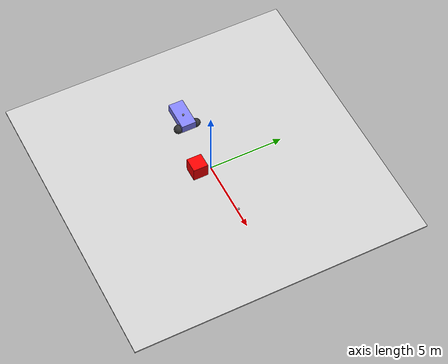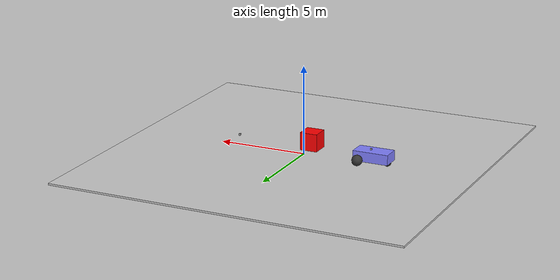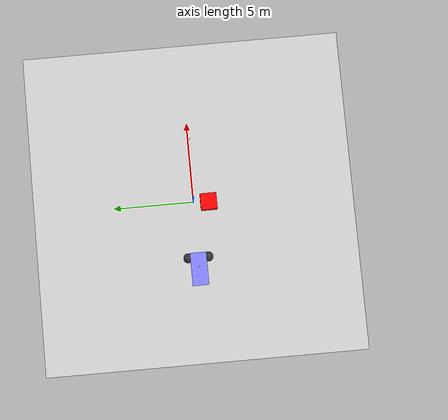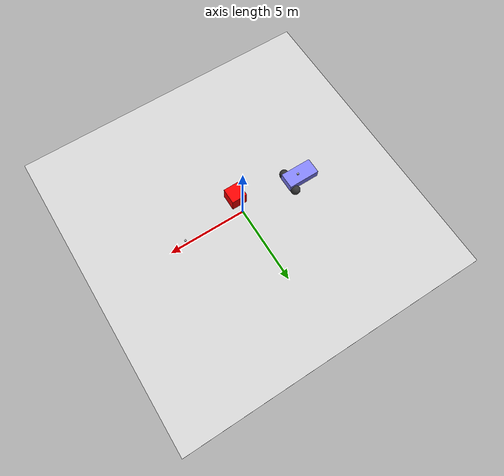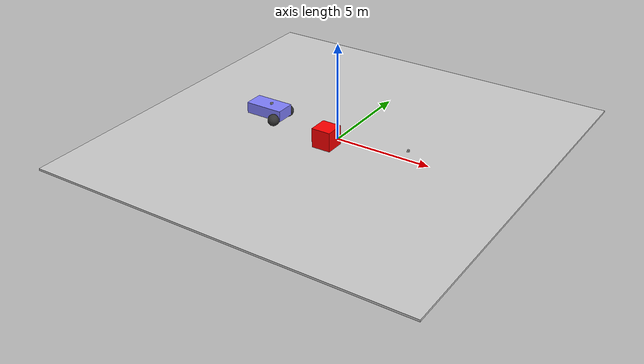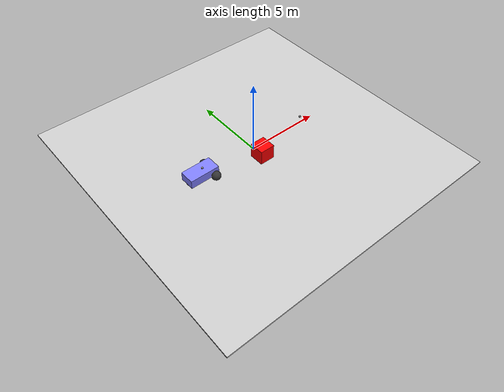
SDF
<sdf version="1.10">
 <world name="visualize_lidar_world">
  <physics name="1ms" type="ignored">
   <max_step_size>0.001</max_step_size>
   <real_time_factor>1</real_time_factor>
   <real_time_update_rate>1000</real_time_update_rate>
  </physics>
  <plugin name="gz::sim::systems::Physics" filename="gz-sim-physics-system"/>
  <plugin name="gz::sim::systems::Sensors" filename="gz-sim-sensors-system">
   <render_engine>ogre2</render_engine>
  </plugin>
  <plugin name="gz::sim::systems::SceneBroadcaster" filename="gz-sim-scene-broadcaster-system"/>
  <gravity>0 0 -9.8000000000000007</gravity>
  <magnetic_field>5.5644999999999998e-06 2.2875799999999999e-05 -4.2388400000000002e-05</magnetic_field>
  <atmosphere type="adiabatic"/>
  <scene>
   <ambient>0.400000006 0.400000006 0.400000006 1</ambient>
   <background>0.699999988 0.699999988 0.699999988 1</background>
   <shadows>true</shadows>
  </scene>
  <model name="ground_plane">
   <static>true</static>
   <link name="link">
    <collision name="collision"><geometry><box><size>20 20 0.10000000000000001</size></box></geometry></collision>
    <visual name="visual">
     <geometry><box><size>20 20 0.10000000000000001</size></box></geometry>
     <material>
      <ambient>0.800000012 0.800000012 0.800000012 1</ambient>
      <diffuse>0.800000012 0.800000012 0.800000012 1</diffuse>
      <specular>0.800000012 0.800000012 0.800000012 1</specular>
     </material>
    </visual>
    <inertial>
     <mass>1</mass>
     <inertia><ixx>1</ixx><ixy>0</ixy><ixz>0</ixz><iyy>1</iyy><iyz>0</iyz><izz>1</izz></inertia>
    </inertial>
   </link>
  </model>
  <model name="box">
   <pose>-0.067625888703758547 -0.92842977219727196 0.54999939641022422 1.1801247564346087e-06 4.1964614322776378e-09 0.0026380061637285277</pose>
   <link name="box_link">
    <inertial>
     <inertia><ixx>1</ixx><ixy>0</ixy><ixz>0</ixz><iyy>1</iyy><iyz>0</iyz><izz>1</izz></inertia>
     <mass>1</mass>
    </inertial>
    <collision name="box_collision"><geometry><box><size>1 1 1</size></box></geometry></collision>
    <visual name="box_visual">
     <geometry><box><size>1 1 1</size></box></geometry>
     <material><ambient>1 0 0 1</ambient><diffuse>1 0 0 1</diffuse><specular>1 0 0 1</specular></material>
    </visual>
   </link>
   <static>false</static>
  </model>
  <model name="model_with_lidar">
   <pose>4 -6.9388900000000004e-18 0.5 0 0 3.1400000000000001</pose>
   <link name="link">
    <pose>0.050000000000000003 0.050000000000000003 0.050000000000000003 0 0 0</pose>
    <inertial>
     <mass>0.10000000000000001</mass>
     <inertia>
      <ixx>0.00016666700000000001</ixx>
      <iyy>0.00016666700000000001</iyy>
      <izz>0.00016666700000000001</izz>
      <ixy>0</ixy>
      <ixz>0</ixz>
      <iyz>0</iyz>
     </inertia>
    </inertial>
    <collision name="collision">
     <geometry><box><size>0.10000000000000001 0.10000000000000001 0.10000000000000001</size></box></geometry>
    </collision>
    <visual name="visual">
     <geometry><box><size>0.10000000000000001 0.10000000000000001 0.10000000000000001</size></box></geometry>
    </visual>
    <sensor name="gpu_lidar" type="gpu_lidar">
     <topic>lidar</topic>
     <update_rate>10</update_rate>
     <enable_metrics>false</enable_metrics>
     <lidar>
      <scan>
       <horizontal>
        <samples>640</samples>
        <resolution>1</resolution>
        <min_angle>-1.396263</min_angle>
        <max_angle>1.396263</max_angle>
       </horizontal>
       <vertical>
        <samples>16</samples>
        <min_angle>-0.261799</min_angle>
        <max_angle>0.261799</max_angle>
        <resolution>1</resolution>
       </vertical>
      </scan>
      <range><min>0.080000000000000002</min><max>10</max><resolution>0.01</resolution></range>
      <noise><type>none</type><mean>0</mean><stddev>0</stddev></noise>
      <visibility_mask>4294967295</visibility_mask>
     </lidar>
    </sensor>
   </link>
   <static>true</static>
  </model>
  <model name="vehicle_blue">
   <pose>-3.9999999923594709 -1.3679798219924739e-14 0.37499916356134794 -6.48428380151821e-15 -3.6334661473190628e-09 -3.9593826131905451e-18</pose>
   <link name="chassis">
    <pose>-0.15142700000000001 0 0.17499999999999999 0 0 0</pose>
    <inertial>
     <mass>1.14395</mass>
     <inertia>
      <ixx>0.126164</ixx>
      <ixy>0</ixy>
      <ixz>0</ixz>
      <iyy>0.41651899999999997</iyy>
      <iyz>0</iyz>
      <izz>0.481014</izz>
     </inertia>
    </inertial>
    <visual name="visual">
     <geometry><box><size>2.0114200000000002 1 0.56872599999999995</size></box></geometry>
     <material><ambient>0.5 0.5 1 1</ambient><diffuse>0.5 0.5 1 1</diffuse><specular>0 0 1 1</specular></material>
    </visual>
    <collision name="collision">
     <geometry><box><size>2.0114200000000002 1 0.56872599999999995</size></box></geometry>
    </collision>
   </link>
   <link name="lidar_link">
    <pose>-4.4408920985006262e-16 0 0.49999999999999994 0 -1.2836918464498039e-32 0</pose>
    <inertial>
     <mass>0.10000000000000001</mass>
     <inertia>
      <ixx>0.00016666700000000001</ixx>
      <iyy>0.00016666700000000001</iyy>
      <izz>0.00016666700000000001</izz>
      <ixy>0</ixy>
      <ixz>0</ixz>
      <iyz>0</iyz>
     </inertia>
    </inertial>
    <collision name="collision">
     <geometry><box><size>0.10000000000000001 0.10000000000000001 0.10000000000000001</size></box></geometry>
    </collision>
    <visual name="visual">
     <geometry><box><size>0.10000000000000001 0.10000000000000001 0.10000000000000001</size></box></geometry>
    </visual>
    <sensor name="gpu_lidar" type="gpu_lidar">
     <topic>lidar2</topic>
     <update_rate>10</update_rate>
     <enable_metrics>false</enable_metrics>
     <lidar>
      <scan>
       <horizontal>
        <samples>640</samples>
        <resolution>1</resolution>
        <min_angle>-1.396263</min_angle>
        <max_angle>1.396263</max_angle>
       </horizontal>
       <vertical>
        <samples>1</samples>
        <min_angle>0</min_angle>
        <max_angle>0</max_angle>
        <resolution>1</resolution>
       </vertical>
      </scan>
      <range><min>0.080000000000000002</min><max>10</max><resolution>0.01</resolution></range>
      <noise><type>none</type><mean>0</mean><stddev>0</stddev></noise>
      <visibility_mask>4294967295</visibility_mask>
     </lidar>
    </sensor>
   </link>
   <link name="left_wheel">
    <pose>0.55428300005964193 0.62502899999999995 -0.024999943948802839 -1.5706999999999987 1.9880640913641687e-10 3.5080083543520347e-21</pose>
    <inertial>
     <mass>2</mass>
     <inertia>
      <ixx>0.14583299999999999</ixx>
      <ixy>0</ixy>
      <ixz>0</ixz>
      <iyy>0.14583299999999999</iyy>
      <iyz>0</iyz>
      <izz>0.125</izz>
     </inertia>
    </inertial>
    <visual name="visual">
     <geometry><sphere><radius>0.29999999999999999</radius></sphere></geometry>
     <material>
      <ambient>0.200000003 0.200000003 0.200000003 1</ambient>
      <diffuse>0.200000003 0.200000003 0.200000003 1</diffuse>
      <specular>0.200000003 0.200000003 0.200000003 1</specular>
     </material>
    </visual>
    <collision name="collision">
     <geometry><sphere><radius>0.29999999999999999</radius></sphere></geometry>
    </collision>
   </link>
   <link name="right_wheel">
    <pose>0.55428200005964223 -0.62502900000000006 -0.024999943948803116 -1.5706999999999987 1.9880640915551135e-10 3.5098178119419944e-21</pose>
    <inertial>
     <mass>2</mass>
     <inertia>
      <ixx>0.14583299999999999</ixx>
      <ixy>0</ixy>
      <ixz>0</ixz>
      <iyy>0.14583299999999999</iyy>
      <iyz>0</iyz>
      <izz>0.125</izz>
     </inertia>
    </inertial>
    <visual name="visual">
     <geometry><sphere><radius>0.29999999999999999</radius></sphere></geometry>
     <material>
      <ambient>0.200000003 0.200000003 0.200000003 1</ambient>
      <diffuse>0.200000003 0.200000003 0.200000003 1</diffuse>
      <specular>0.200000003 0.200000003 0.200000003 1</specular>
     </material>
    </visual>
    <collision name="collision">
     <geometry><sphere><radius>0.29999999999999999</radius></sphere></geometry>
    </collision>
   </link>
   <link name="caster">
    <pose>-0.95713800000000093 0 -0.125 6.0979536902564912e-17 -2.3046617859383212e-15 3.9591553400022558e-18</pose>
    <inertial>
     <mass>1</mass>
     <inertia>
      <ixx>0.10000000000000001</ixx>
      <ixy>0</ixy>
      <ixz>0</ixz>
      <iyy>0.10000000000000001</iyy>
      <iyz>0</iyz>
      <izz>0.10000000000000001</izz>
     </inertia>
    </inertial>
    <visual name="visual">
     <geometry><sphere><radius>0.20000000000000001</radius></sphere></geometry>
     <material>
      <ambient>0.200000003 0.200000003 0.200000003 1</ambient>
      <diffuse>0.200000003 0.200000003 0.200000003 1</diffuse>
      <specular>0.200000003 0.200000003 0.200000003 1</specular>
     </material>
    </visual>
    <collision name="collision">
     <geometry><sphere><radius>0.20000000000000001</radius></sphere></geometry>
    </collision>
   </link>
   <joint name="lidar_sensor_joint" type="fixed"><parent>chassis</parent><child>lidar_link</child></joint>
   <joint name="left_wheel_joint" type="revolute">
    <parent>chassis</parent>
    <child>left_wheel</child>
    <axis>
     <xyz>0 0 1</xyz>
     <limit>
      <lower>-1.7976900000000001e+308</lower>
      <upper>1.7976900000000001e+308</upper>
      <effort>inf</effort>
      <velocity>inf</velocity>
      <stiffness>100000000</stiffness>
      <dissipation>1</dissipation>
     </limit>
     <dynamics>
      <spring_reference>0</spring_reference>
      <spring_stiffness>0</spring_stiffness>
      <damping>0</damping>
      <friction>0</friction>
     </dynamics>
    </axis>
    <pose>0 0 1.11022e-16 0 0 0</pose>
   </joint>
   <joint name="right_wheel_joint" type="revolute">
    <parent>chassis</parent>
    <child>right_wheel</child>
    <axis>
     <xyz>0 0 1</xyz>
     <limit>
      <lower>-1.7976900000000001e+308</lower>
      <upper>1.7976900000000001e+308</upper>
      <effort>inf</effort>
      <velocity>inf</velocity>
      <stiffness>100000000</stiffness>
      <dissipation>1</dissipation>
     </limit>
     <dynamics>
      <spring_reference>0</spring_reference>
      <spring_stiffness>0</spring_stiffness>
      <damping>0</damping>
      <friction>0</friction>
     </dynamics>
    </axis>
    <pose>-1.11022e-16 0 0 0 0 0</pose>
   </joint>
   <joint name="caster_wheel" type="ball"><parent>chassis</parent><child>caster</child></joint>
   <plugin name="gz::sim::systems::DiffDrive" filename="gz-sim-diff-drive-system">
    <left_joint>left_wheel_joint</left_joint>
    <right_joint>right_wheel_joint</right_joint>
    <wheel_separation>1.25</wheel_separation>
    <wheel_radius>0.3</wheel_radius>
    <odom_publish_frequency>1</odom_publish_frequency>
   </plugin>
   <static>false</static>
  </model>
  <light name="sun" type="directional">
   <pose>0 0 10 0 0 0</pose>
   <intensity>1</intensity>
   <direction>-0.5 0.10000000000000001 -0.90000000000000002</direction>
   <diffuse>0.800000012 0.800000012 0.800000012 1</diffuse>
   <specular>0.200000003 0.200000003 0.200000003 1</specular>
   <attenuation>
    <range>1000</range>
    <linear>0.0099999997764825821</linear>
    <constant>0.89999997615814209</constant>
    <quadratic>0.0010000000474974513</quadratic>
   </attenuation>
   <spot><inner_angle>0</inner_angle><outer_angle>0</outer_angle><falloff>0</falloff></spot>
  </light>
 </world>
</sdf>
